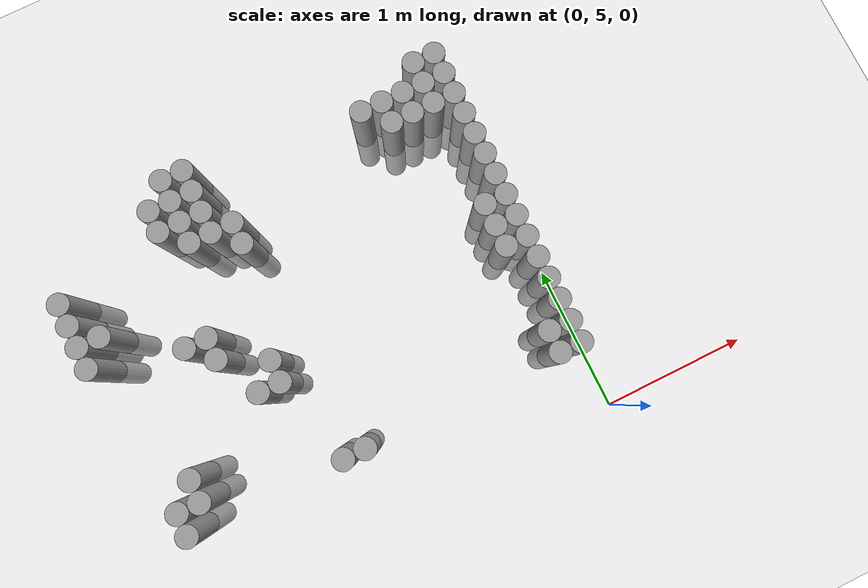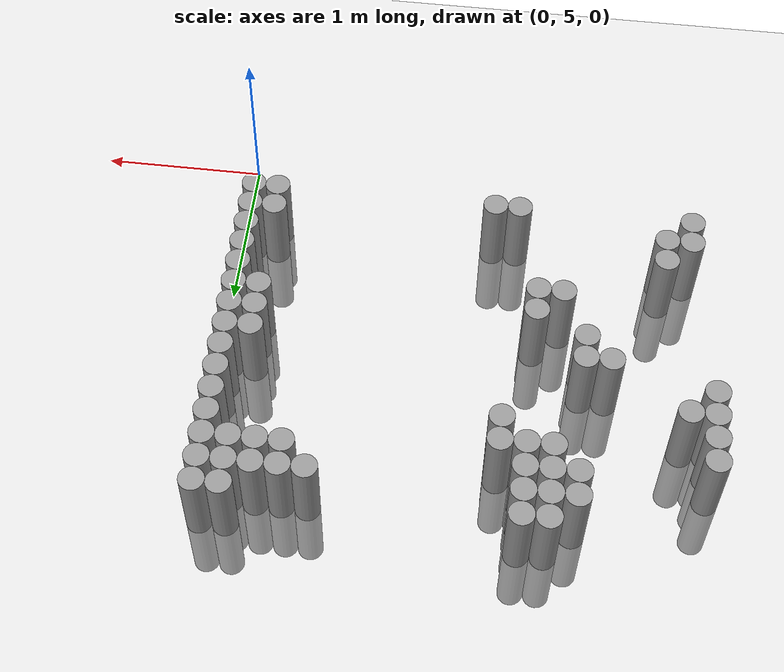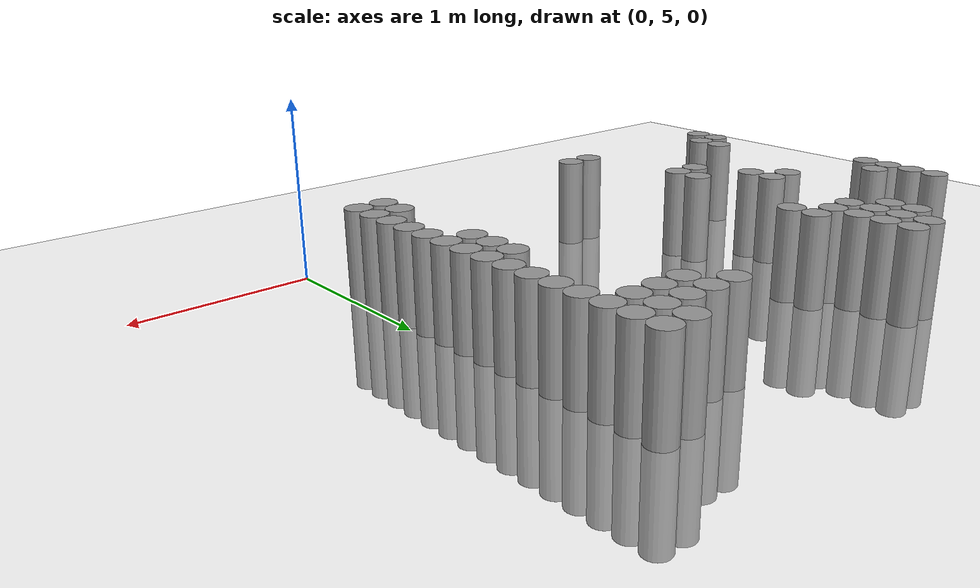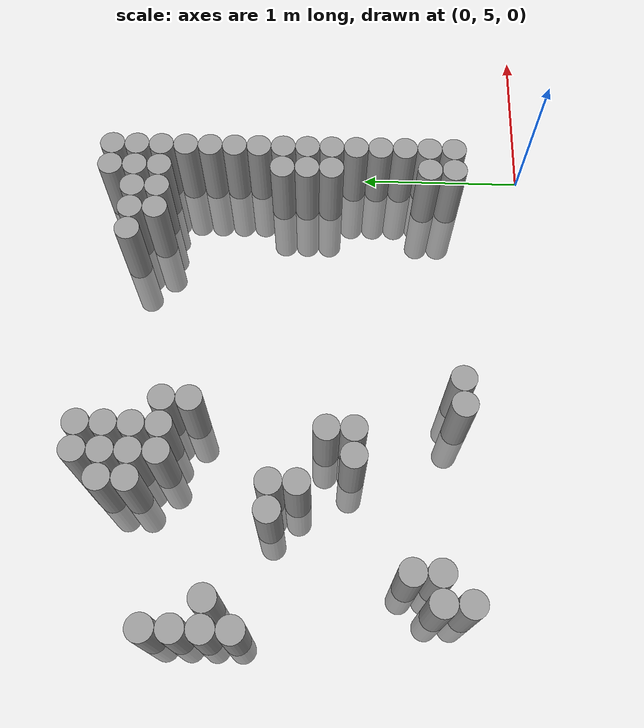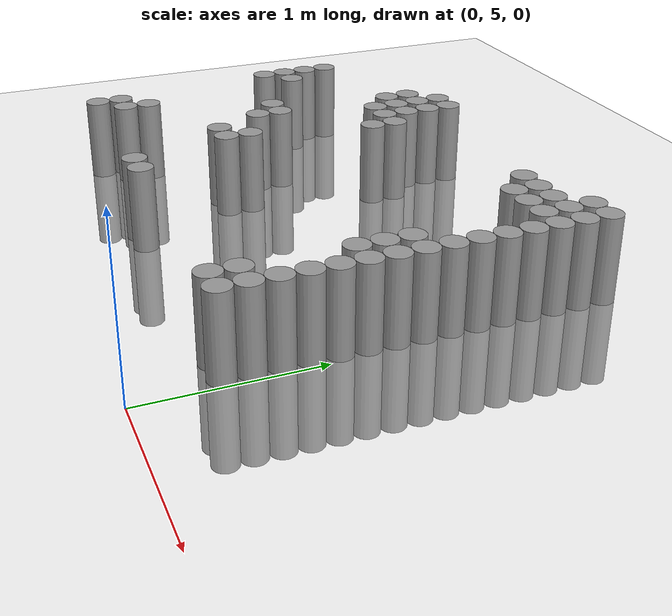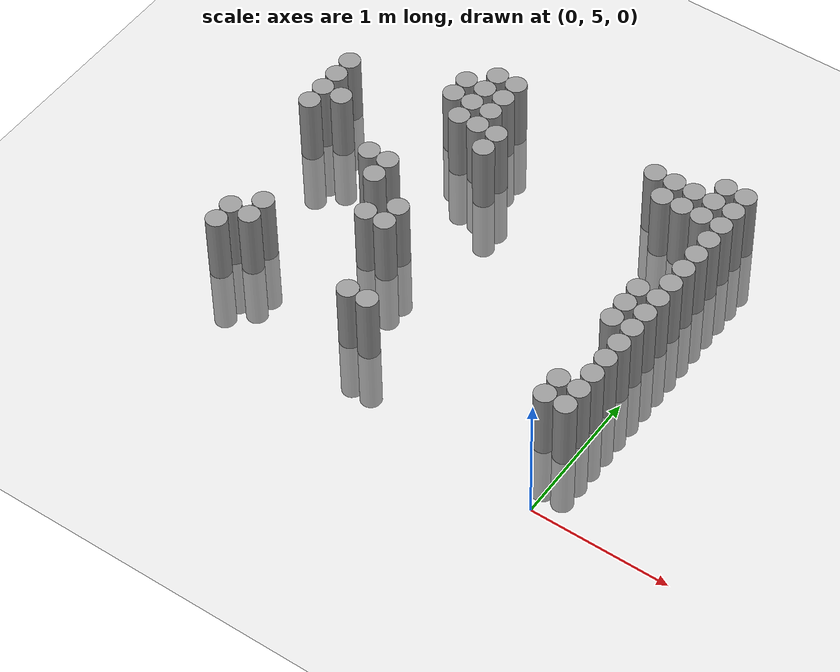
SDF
<sdf version="1.6">
 <world name="default">
  <model name="ground_plane">
   <static>1</static>
   <static>1</static>
   <link name="link">
    <collision name="collision">
     <geometry><plane><normal>0 0 1</normal><size>100 100</size></plane></geometry>
     <surface><friction><ode><mu>100</mu><mu2>50</mu2></ode></friction></surface>
    </collision>
    <visual name="visual">
     <cast_shadows>0</cast_shadows>
     <geometry><plane><normal>0 0 1</normal><size>100 100</size></plane></geometry>
     <material>
      <script><uri>file://media/materials/scripts/gazebo.material</uri><name>Gazebo/Grey</name></script>
     </material>
    </visual>
   </link>
  </model>
  <model name="unit_cylinder_161">
   <static>1</static>
   <pose>-2.925000 6.675000 0.000000 0.000000 0.000000 0.000000</pose>
   <link name="link">
    <inertial>
     <mass>1</mass>
     <inertia><ixx>0.145833</ixx><ixy>0</ixy><ixz>0</ixz><iyy>0.145833</iyy><iyz>0</iyz><izz>0.125</izz></inertia>
    </inertial>
    <collision name="collision">
     <geometry><cylinder><radius>0.075000</radius><length>1</length></cylinder></geometry>
    </collision>
    <visual name="visual">
     <geometry><cylinder><radius>0.075000</radius><length>1</length></cylinder></geometry>
     <material>
      <script><name>Gazebo/Grey</name><uri>file://media/materials/scripts/gazebo.material</uri></script>
     </material>
    </visual>
   </link>
  </model>
  <model name="unit_cylinder_162">
   <static>1</static>
   <pose>-2.925000 6.825000 0.000000 0.000000 0.000000 0.000000</pose>
   <link name="link">
    <inertial>
     <mass>1</mass>
     <inertia><ixx>0.145833</ixx><ixy>0</ixy><ixz>0</ixz><iyy>0.145833</iyy><iyz>0</iyz><izz>0.125</izz></inertia>
    </inertial>
    <collision name="collision">
     <geometry><cylinder><radius>0.075000</radius><length>1</length></cylinder></geometry>
    </collision>
    <visual name="visual">
     <geometry><cylinder><radius>0.075000</radius><length>1</length></cylinder></geometry>
     <material>
      <script><name>Gazebo/Grey</name><uri>file://media/materials/scripts/gazebo.material</uri></script>
     </material>
    </visual>
   </link>
  </model>
  <model name="unit_cylinder_163">
   <static>1</static>
   <pose>-2.925000 6.975000 0.000000 0.000000 0.000000 0.000000</pose>
   <link name="link">
    <inertial>
     <mass>1</mass>
     <inertia><ixx>0.145833</ixx><ixy>0</ixy><ixz>0</ixz><iyy>0.145833</iyy><iyz>0</iyz><izz>0.125</izz></inertia>
    </inertial>
    <collision name="collision">
     <geometry><cylinder><radius>0.075000</radius><length>1</length></cylinder></geometry>
    </collision>
    <visual name="visual">
     <geometry><cylinder><radius>0.075000</radius><length>1</length></cylinder></geometry>
     <material>
      <script><name>Gazebo/Grey</name><uri>file://media/materials/scripts/gazebo.material</uri></script>
     </material>
    </visual>
   </link>
  </model>
  <model name="unit_cylinder_164">
   <static>1</static>
   <pose>-2.925000 7.125000 0.000000 0.000000 0.000000 0.000000</pose>
   <link name="link">
    <inertial>
     <mass>1</mass>
     <inertia><ixx>0.145833</ixx><ixy>0</ixy><ixz>0</ixz><iyy>0.145833</iyy><iyz>0</iyz><izz>0.125</izz></inertia>
    </inertial>
    <collision name="collision">
     <geometry><cylinder><radius>0.075000</radius><length>1</length></cylinder></geometry>
    </collision>
    <visual name="visual">
     <geometry><cylinder><radius>0.075000</radius><length>1</length></cylinder></geometry>
     <material>
      <script><name>Gazebo/Grey</name><uri>file://media/materials/scripts/gazebo.material</uri></script>
     </material>
    </visual>
   </link>
  </model>
  <model name="unit_cylinder_166">
   <static>1</static>
   <pose>-2.775000 5.475000 0.000000 0.000000 0.000000 0.000000</pose>
   <link name="link">
    <inertial>
     <mass>1</mass>
     <inertia><ixx>0.145833</ixx><ixy>0</ixy><ixz>0</ixz><iyy>0.145833</iyy><iyz>0</iyz><izz>0.125</izz></inertia>
    </inertial>
    <collision name="collision">
     <geometry><cylinder><radius>0.075000</radius><length>1</length></cylinder></geometry>
    </collision>
    <visual name="visual">
     <geometry><cylinder><radius>0.075000</radius><length>1</length></cylinder></geometry>
     <material>
      <script><name>Gazebo/Grey</name><uri>file://media/materials/scripts/gazebo.material</uri></script>
     </material>
    </visual>
   </link>
  </model>
  <model name="unit_cylinder_167">
   <static>1</static>
   <pose>-2.775000 5.625000 0.000000 0.000000 0.000000 0.000000</pose>
   <link name="link">
    <inertial>
     <mass>1</mass>
     <inertia><ixx>0.145833</ixx><ixy>0</ixy><ixz>0</ixz><iyy>0.145833</iyy><iyz>0</iyz><izz>0.125</izz></inertia>
    </inertial>
    <collision name="collision">
     <geometry><cylinder><radius>0.075000</radius><length>1</length></cylinder></geometry>
    </collision>
    <visual name="visual">
     <geometry><cylinder><radius>0.075000</radius><length>1</length></cylinder></geometry>
     <material>
      <script><name>Gazebo/Grey</name><uri>file://media/materials/scripts/gazebo.material</uri></script>
     </material>
    </visual>
   </link>
  </model>
  <model name="unit_cylinder_168">
   <static>1</static>
   <pose>-2.775000 6.825000 0.000000 0.000000 0.000000 0.000000</pose>
   <link name="link">
    <inertial>
     <mass>1</mass>
     <inertia><ixx>0.145833</ixx><ixy>0</ixy><ixz>0</ixz><iyy>0.145833</iyy><iyz>0</iyz><izz>0.125</izz></inertia>
    </inertial>
    <collision name="collision">
     <geometry><cylinder><radius>0.075000</radius><length>1</length></cylinder></geometry>
    </collision>
    <visual name="visual">
     <geometry><cylinder><radius>0.075000</radius><length>1</length></cylinder></geometry>
     <material>
      <script><name>Gazebo/Grey</name><uri>file://media/materials/scripts/gazebo.material</uri></script>
     </material>
    </visual>
   </link>
  </model>
  <model name="unit_cylinder_173">
   <static>1</static>
   <pose>-2.625000 5.625000 0.000000 0.000000 0.000000 0.000000</pose>
   <link name="link">
    <inertial>
     <mass>1</mass>
     <inertia><ixx>0.145833</ixx><ixy>0</ixy><ixz>0</ixz><iyy>0.145833</iyy><iyz>0</iyz><izz>0.125</izz></inertia>
    </inertial>
    <collision name="collision">
     <geometry><cylinder><radius>0.075000</radius><length>1</length></cylinder></geometry>
    </collision>
    <visual name="visual">
     <geometry><cylinder><radius>0.075000</radius><length>1</length></cylinder></geometry>
     <material>
      <script><name>Gazebo/Grey</name><uri>file://media/materials/scripts/gazebo.material</uri></script>
     </material>
    </visual>
   </link>
  </model>
  <model name="unit_cylinder_174">
   <static>1</static>
   <pose>-2.625000 5.775000 0.000000 0.000000 0.000000 0.000000</pose>
   <link name="link">
    <inertial>
     <mass>1</mass>
     <inertia><ixx>0.145833</ixx><ixy>0</ixy><ixz>0</ixz><iyy>0.145833</iyy><iyz>0</iyz><izz>0.125</izz></inertia>
    </inertial>
    <collision name="collision">
     <geometry><cylinder><radius>0.075000</radius><length>1</length></cylinder></geometry>
    </collision>
    <visual name="visual">
     <geometry><cylinder><radius>0.075000</radius><length>1</length></cylinder></geometry>
     <material>
      <script><name>Gazebo/Grey</name><uri>file://media/materials/scripts/gazebo.material</uri></script>
     </material>
    </visual>
   </link>
  </model>
  <model name="unit_cylinder_185">
   <static>1</static>
   <pose>-2.325000 6.525000 0.000000 0.000000 0.000000 0.000000</pose>
   <link name="link">
    <inertial>
     <mass>1</mass>
     <inertia><ixx>0.145833</ixx><ixy>0</ixy><ixz>0</ixz><iyy>0.145833</iyy><iyz>0</iyz><izz>0.125</izz></inertia>
    </inertial>
    <collision name="collision">
     <geometry><cylinder><radius>0.075000</radius><length>1</length></cylinder></geometry>
    </collision>
    <visual name="visual">
     <geometry><cylinder><radius>0.075000</radius><length>1</length></cylinder></geometry>
     <material>
      <script><name>Gazebo/Grey</name><uri>file://media/materials/scripts/gazebo.material</uri></script>
     </material>
    </visual>
   </link>
  </model>
  <model name="unit_cylinder_191">
   <static>1</static>
   <pose>-2.175000 6.375000 0.000000 0.000000 0.000000 0.000000</pose>
   <link name="link">
    <inertial>
     <mass>1</mass>
     <inertia><ixx>0.145833</ixx><ixy>0</ixy><ixz>0</ixz><iyy>0.145833</iyy><iyz>0</iyz><izz>0.125</izz></inertia>
    </inertial>
    <collision name="collision">
     <geometry><cylinder><radius>0.075000</radius><length>1</length></cylinder></geometry>
    </collision>
    <visual name="visual">
     <geometry><cylinder><radius>0.075000</radius><length>1</length></cylinder></geometry>
     <material>
      <script><name>Gazebo/Grey</name><uri>file://media/materials/scripts/gazebo.material</uri></script>
     </material>
    </visual>
   </link>
  </model>
  <model name="unit_cylinder_192">
   <static>1</static>
   <pose>-2.175000 6.525000 0.000000 0.000000 0.000000 0.000000</pose>
   <link name="link">
    <inertial>
     <mass>1</mass>
     <inertia><ixx>0.145833</ixx><ixy>0</ixy><ixz>0</ixz><iyy>0.145833</iyy><iyz>0</iyz><izz>0.125</izz></inertia>
    </inertial>
    <collision name="collision">
     <geometry><cylinder><radius>0.075000</radius><length>1</length></cylinder></geometry>
    </collision>
    <visual name="visual">
     <geometry><cylinder><radius>0.075000</radius><length>1</length></cylinder></geometry>
     <material>
      <script><name>Gazebo/Grey</name><uri>file://media/materials/scripts/gazebo.material</uri></script>
     </material>
    </visual>
   </link>
  </model>
  <model name="unit_cylinder_193">
   <static>1</static>
   <pose>-2.175000 7.275000 0.000000 0.000000 0.000000 0.000000</pose>
   <link name="link">
    <inertial>
     <mass>1</mass>
     <inertia><ixx>0.145833</ixx><ixy>0</ixy><ixz>0</ixz><iyy>0.145833</iyy><iyz>0</iyz><izz>0.125</izz></inertia>
    </inertial>
    <collision name="collision">
     <geometry><cylinder><radius>0.075000</radius><length>1</length></cylinder></geometry>
    </collision>
    <visual name="visual">
     <geometry><cylinder><radius>0.075000</radius><length>1</length></cylinder></geometry>
     <material>
      <script><name>Gazebo/Grey</name><uri>file://media/materials/scripts/gazebo.material</uri></script>
     </material>
    </visual>
   </link>
  </model>
  <model name="unit_cylinder_194">
   <static>1</static>
   <pose>-2.175000 7.425000 0.000000 0.000000 0.000000 0.000000</pose>
   <link name="link">
    <inertial>
     <mass>1</mass>
     <inertia><ixx>0.145833</ixx><ixy>0</ixy><ixz>0</ixz><iyy>0.145833</iyy><iyz>0</iyz><izz>0.125</izz></inertia>
    </inertial>
    <collision name="collision">
     <geometry><cylinder><radius>0.075000</radius><length>1</length></cylinder></geometry>
    </collision>
    <visual name="visual">
     <geometry><cylinder><radius>0.075000</radius><length>1</length></cylinder></geometry>
     <material>
      <script><name>Gazebo/Grey</name><uri>file://media/materials/scripts/gazebo.material</uri></script>
     </material>
    </visual>
   </link>
  </model>
  <model name="unit_cylinder_199">
   <static>1</static>
   <pose>-2.025000 6.075000 0.000000 0.000000 0.000000 0.000000</pose>
   <link name="link">
    <inertial>
     <mass>1</mass>
     <inertia><ixx>0.145833</ixx><ixy>0</ixy><ixz>0</ixz><iyy>0.145833</iyy><iyz>0</iyz><izz>0.125</izz></inertia>
    </inertial>
    <collision name="collision">
     <geometry><cylinder><radius>0.075000</radius><length>1</length></cylinder></geometry>
    </collision>
    <visual name="visual">
     <geometry><cylinder><radius>0.075000</radius><length>1</length></cylinder></geometry>
     <material>
      <script><name>Gazebo/Grey</name><uri>file://media/materials/scripts/gazebo.material</uri></script>
     </material>
    </visual>
   </link>
  </model>
  <model name="unit_cylinder_200">
   <static>1</static>
   <pose>-2.025000 7.125000 0.000000 0.000000 0.000000 0.000000</pose>
   <link name="link">
    <inertial>
     <mass>1</mass>
     <inertia><ixx>0.145833</ixx><ixy>0</ixy><ixz>0</ixz><iyy>0.145833</iyy><iyz>0</iyz><izz>0.125</izz></inertia>
    </inertial>
    <collision name="collision">
     <geometry><cylinder><radius>0.075000</radius><length>1</length></cylinder></geometry>
    </collision>
    <visual name="visual">
     <geometry><cylinder><radius>0.075000</radius><length>1</length></cylinder></geometry>
     <material>
      <script><name>Gazebo/Grey</name><uri>file://media/materials/scripts/gazebo.material</uri></script>
     </material>
    </visual>
   </link>
  </model>
  <model name="unit_cylinder_201">
   <static>1</static>
   <pose>-2.025000 7.275000 0.000000 0.000000 0.000000 0.000000</pose>
   <link name="link">
    <inertial>
     <mass>1</mass>
     <inertia><ixx>0.145833</ixx><ixy>0</ixy><ixz>0</ixz><iyy>0.145833</iyy><iyz>0</iyz><izz>0.125</izz></inertia>
    </inertial>
    <collision name="collision">
     <geometry><cylinder><radius>0.075000</radius><length>1</length></cylinder></geometry>
    </collision>
    <visual name="visual">
     <geometry><cylinder><radius>0.075000</radius><length>1</length></cylinder></geometry>
     <material>
      <script><name>Gazebo/Grey</name><uri>file://media/materials/scripts/gazebo.material</uri></script>
     </material>
    </visual>
   </link>
  </model>
  <model name="unit_cylinder_202">
   <static>1</static>
   <pose>-2.025000 7.425000 0.000000 0.000000 0.000000 0.000000</pose>
   <link name="link">
    <inertial>
     <mass>1</mass>
     <inertia><ixx>0.145833</ixx><ixy>0</ixy><ixz>0</ixz><iyy>0.145833</iyy><iyz>0</iyz><izz>0.125</izz></inertia>
    </inertial>
    <collision name="collision">
     <geometry><cylinder><radius>0.075000</radius><length>1</length></cylinder></geometry>
    </collision>
    <visual name="visual">
     <geometry><cylinder><radius>0.075000</radius><length>1</length></cylinder></geometry>
     <material>
      <script><name>Gazebo/Grey</name><uri>file://media/materials/scripts/gazebo.material</uri></script>
     </material>
    </visual>
   </link>
  </model>
  <model name="unit_cylinder_203">
   <static>1</static>
   <pose>-2.025000 7.575000 0.000000 0.000000 0.000000 0.000000</pose>
   <link name="link">
    <inertial>
     <mass>1</mass>
     <inertia><ixx>0.145833</ixx><ixy>0</ixy><ixz>0</ixz><iyy>0.145833</iyy><iyz>0</iyz><izz>0.125</izz></inertia>
    </inertial>
    <collision name="collision">
     <geometry><cylinder><radius>0.075000</radius><length>1</length></cylinder></geometry>
    </collision>
    <visual name="visual">
     <geometry><cylinder><radius>0.075000</radius><length>1</length></cylinder></geometry>
     <material>
      <script><name>Gazebo/Grey</name><uri>file://media/materials/scripts/gazebo.material</uri></script>
     </material>
    </visual>
   </link>
  </model>
  <model name="unit_cylinder_211">
   <static>1</static>
   <pose>-1.875000 6.075000 0.000000 0.000000 0.000000 0.000000</pose>
   <link name="link">
    <inertial>
     <mass>1</mass>
     <inertia><ixx>0.145833</ixx><ixy>0</ixy><ixz>0</ixz><iyy>0.145833</iyy><iyz>0</iyz><izz>0.125</izz></inertia>
    </inertial>
    <collision name="collision">
     <geometry><cylinder><radius>0.075000</radius><length>1</length></cylinder></geometry>
    </collision>
    <visual name="visual">
     <geometry><cylinder><radius>0.075000</radius><length>1</length></cylinder></geometry>
     <material>
      <script><name>Gazebo/Grey</name><uri>file://media/materials/scripts/gazebo.material</uri></script>
     </material>
    </visual>
   </link>
  </model>
  <model name="unit_cylinder_212">
   <static>1</static>
   <pose>-1.875000 6.225000 0.000000 0.000000 0.000000 0.000000</pose>
   <link name="link">
    <inertial>
     <mass>1</mass>
     <inertia><ixx>0.145833</ixx><ixy>0</ixy><ixz>0</ixz><iyy>0.145833</iyy><iyz>0</iyz><izz>0.125</izz></inertia>
    </inertial>
    <collision name="collision">
     <geometry><cylinder><radius>0.075000</radius><length>1</length></cylinder></geometry>
    </collision>
    <visual name="visual">
     <geometry><cylinder><radius>0.075000</radius><length>1</length></cylinder></geometry>
     <material>
      <script><name>Gazebo/Grey</name><uri>file://media/materials/scripts/gazebo.material</uri></script>
     </material>
    </visual>
   </link>
  </model>
  <model name="unit_cylinder_213">
   <static>1</static>
   <pose>-1.875000 7.125000 0.000000 0.000000 0.000000 0.000000</pose>
   <link name="link">
    <inertial>
     <mass>1</mass>
     <inertia><ixx>0.145833</ixx><ixy>0</ixy><ixz>0</ixz><iyy>0.145833</iyy><iyz>0</iyz><izz>0.125</izz></inertia>
    </inertial>
    <collision name="collision">
     <geometry><cylinder><radius>0.075000</radius><length>1</length></cylinder></geometry>
    </collision>
    <visual name="visual">
     <geometry><cylinder><radius>0.075000</radius><length>1</length></cylinder></geometry>
     <material>
      <script><name>Gazebo/Grey</name><uri>file://media/materials/scripts/gazebo.material</uri></script>
     </material>
    </visual>
   </link>
  </model>
  <model name="unit_cylinder_214">
   <static>1</static>
   <pose>-1.875000 7.275000 0.000000 0.000000 0.000000 0.000000</pose>
   <link name="link">
    <inertial>
     <mass>1</mass>
     <inertia><ixx>0.145833</ixx><ixy>0</ixy><ixz>0</ixz><iyy>0.145833</iyy><iyz>0</iyz><izz>0.125</izz></inertia>
    </inertial>
    <collision name="collision">
     <geometry><cylinder><radius>0.075000</radius><length>1</length></cylinder></geometry>
    </collision>
    <visual name="visual">
     <geometry><cylinder><radius>0.075000</radius><length>1</length></cylinder></geometry>
     <material>
      <script><name>Gazebo/Grey</name><uri>file://media/materials/scripts/gazebo.material</uri></script>
     </material>
    </visual>
   </link>
  </model>
  <model name="unit_cylinder_215">
   <static>1</static>
   <pose>-1.875000 7.425000 0.000000 0.000000 0.000000 0.000000</pose>
   <link name="link">
    <inertial>
     <mass>1</mass>
     <inertia><ixx>0.145833</ixx><ixy>0</ixy><ixz>0</ixz><iyy>0.145833</iyy><iyz>0</iyz><izz>0.125</izz></inertia>
    </inertial>
    <collision name="collision">
     <geometry><cylinder><radius>0.075000</radius><length>1</length></cylinder></geometry>
    </collision>
    <visual name="visual">
     <geometry><cylinder><radius>0.075000</radius><length>1</length></cylinder></geometry>
     <material>
      <script><name>Gazebo/Grey</name><uri>file://media/materials/scripts/gazebo.material</uri></script>
     </material>
    </visual>
   </link>
  </model>
  <model name="unit_cylinder_216">
   <static>1</static>
   <pose>-1.875000 7.575000 0.000000 0.000000 0.000000 0.000000</pose>
   <link name="link">
    <inertial>
     <mass>1</mass>
     <inertia><ixx>0.145833</ixx><ixy>0</ixy><ixz>0</ixz><iyy>0.145833</iyy><iyz>0</iyz><izz>0.125</izz></inertia>
    </inertial>
    <collision name="collision">
     <geometry><cylinder><radius>0.075000</radius><length>1</length></cylinder></geometry>
    </collision>
    <visual name="visual">
     <geometry><cylinder><radius>0.075000</radius><length>1</length></cylinder></geometry>
     <material>
      <script><name>Gazebo/Grey</name><uri>file://media/materials/scripts/gazebo.material</uri></script>
     </material>
    </visual>
   </link>
  </model>
  <model name="unit_cylinder_223">
   <static>1</static>
   <pose>-1.725000 5.475000 0.000000 0.000000 0.000000 0.000000</pose>
   <link name="link">
    <inertial>
     <mass>1</mass>
     <inertia><ixx>0.145833</ixx><ixy>0</ixy><ixz>0</ixz><iyy>0.145833</iyy><iyz>0</iyz><izz>0.125</izz></inertia>
    </inertial>
    <collision name="collision">
     <geometry><cylinder><radius>0.075000</radius><length>1</length></cylinder></geometry>
    </collision>
    <visual name="visual">
     <geometry><cylinder><radius>0.075000</radius><length>1</length></cylinder></geometry>
     <material>
      <script><name>Gazebo/Grey</name><uri>file://media/materials/scripts/gazebo.material</uri></script>
     </material>
    </visual>
   </link>
  </model>
  <model name="unit_cylinder_224">
   <static>1</static>
   <pose>-1.725000 6.975000 0.000000 0.000000 0.000000 0.000000</pose>
   <link name="link">
    <inertial>
     <mass>1</mass>
     <inertia><ixx>0.145833</ixx><ixy>0</ixy><ixz>0</ixz><iyy>0.145833</iyy><iyz>0</iyz><izz>0.125</izz></inertia>
    </inertial>
    <collision name="collision">
     <geometry><cylinder><radius>0.075000</radius><length>1</length></cylinder></geometry>
    </collision>
    <visual name="visual">
     <geometry><cylinder><radius>0.075000</radius><length>1</length></cylinder></geometry>
     <material>
      <script><name>Gazebo/Grey</name><uri>file://media/materials/scripts/gazebo.material</uri></script>
     </material>
    </visual>
   </link>
  </model>
  <model name="unit_cylinder_225">
   <static>1</static>
   <pose>-1.725000 7.125000 0.000000 0.000000 0.000000 0.000000</pose>
   <link name="link">
    <inertial>
     <mass>1</mass>
     <inertia><ixx>0.145833</ixx><ixy>0</ixy><ixz>0</ixz><iyy>0.145833</iyy><iyz>0</iyz><izz>0.125</izz></inertia>
    </inertial>
    <collision name="collision">
     <geometry><cylinder><radius>0.075000</radius><length>1</length></cylinder></geometry>
    </collision>
    <visual name="visual">
     <geometry><cylinder><radius>0.075000</radius><length>1</length></cylinder></geometry>
     <material>
      <script><name>Gazebo/Grey</name><uri>file://media/materials/scripts/gazebo.material</uri></script>
     </material>
    </visual>
   </link>
  </model>
  <model name="unit_cylinder_232">
   <static>1</static>
   <pose>-1.575000 5.475000 0.000000 0.000000 0.000000 0.000000</pose>
   <link name="link">
    <inertial>
     <mass>1</mass>
     <inertia><ixx>0.145833</ixx><ixy>0</ixy><ixz>0</ixz><iyy>0.145833</iyy><iyz>0</iyz><izz>0.125</izz></inertia>
    </inertial>
    <collision name="collision">
     <geometry><cylinder><radius>0.075000</radius><length>1</length></cylinder></geometry>
    </collision>
    <visual name="visual">
     <geometry><cylinder><radius>0.075000</radius><length>1</length></cylinder></geometry>
     <material>
      <script><name>Gazebo/Grey</name><uri>file://media/materials/scripts/gazebo.material</uri></script>
     </material>
    </visual>
   </link>
  </model>
  <model name="unit_cylinder_237">
   <static>1</static>
   <pose>-0.675000 7.425000 0.000000 0.000000 0.000000 0.000000</pose>
   <link name="link">
    <inertial>
     <mass>1</mass>
     <inertia><ixx>0.145833</ixx><ixy>0</ixy><ixz>0</ixz><iyy>0.145833</iyy><iyz>0</iyz><izz>0.125</izz></inertia>
    </inertial>
    <collision name="collision">
     <geometry><cylinder><radius>0.075000</radius><length>1</length></cylinder></geometry>
    </collision>
    <visual name="visual">
     <geometry><cylinder><radius>0.075000</radius><length>1</length></cylinder></geometry>
     <material>
      <script><name>Gazebo/Grey</name><uri>file://media/materials/scripts/gazebo.material</uri></script>
     </material>
    </visual>
   </link>
  </model>
  <model name="unit_cylinder_238">
   <static>1</static>
   <pose>-0.525000 7.275000 0.000000 0.000000 0.000000 0.000000</pose>
   <link name="link">
    <inertial>
     <mass>1</mass>
     <inertia><ixx>0.145833</ixx><ixy>0</ixy><ixz>0</ixz><iyy>0.145833</iyy><iyz>0</iyz><izz>0.125</izz></inertia>
    </inertial>
    <collision name="collision">
     <geometry><cylinder><radius>0.075000</radius><length>1</length></cylinder></geometry>
    </collision>
    <visual name="visual">
     <geometry><cylinder><radius>0.075000</radius><length>1</length></cylinder></geometry>
     <material>
      <script><name>Gazebo/Grey</name><uri>file://media/materials/scripts/gazebo.material</uri></script>
     </material>
    </visual>
   </link>
  </model>
  <model name="unit_cylinder_239">
   <static>1</static>
   <pose>-0.525000 7.425000 0.000000 0.000000 0.000000 0.000000</pose>
   <link name="link">
    <inertial>
     <mass>1</mass>
     <inertia><ixx>0.145833</ixx><ixy>0</ixy><ixz>0</ixz><iyy>0.145833</iyy><iyz>0</iyz><izz>0.125</izz></inertia>
    </inertial>
    <collision name="collision">
     <geometry><cylinder><radius>0.075000</radius><length>1</length></cylinder></geometry>
    </collision>
    <visual name="visual">
     <geometry><cylinder><radius>0.075000</radius><length>1</length></cylinder></geometry>
     <material>
      <script><name>Gazebo/Grey</name><uri>file://media/materials/scripts/gazebo.material</uri></script>
     </material>
    </visual>
   </link>
  </model>
  <model name="unit_cylinder_240">
   <static>1</static>
   <pose>-0.375000 7.275000 0.000000 0.000000 0.000000 0.000000</pose>
   <link name="link">
    <inertial>
     <mass>1</mass>
     <inertia><ixx>0.145833</ixx><ixy>0</ixy><ixz>0</ixz><iyy>0.145833</iyy><iyz>0</iyz><izz>0.125</izz></inertia>
    </inertial>
    <collision name="collision">
     <geometry><cylinder><radius>0.075000</radius><length>1</length></cylinder></geometry>
    </collision>
    <visual name="visual">
     <geometry><cylinder><radius>0.075000</radius><length>1</length></cylinder></geometry>
     <material>
      <script><name>Gazebo/Grey</name><uri>file://media/materials/scripts/gazebo.material</uri></script>
     </material>
    </visual>
   </link>
  </model>
  <model name="unit_cylinder_241">
   <static>1</static>
   <pose>-0.375000 7.425000 0.000000 0.000000 0.000000 0.000000</pose>
   <link name="link">
    <inertial>
     <mass>1</mass>
     <inertia><ixx>0.145833</ixx><ixy>0</ixy><ixz>0</ixz><iyy>0.145833</iyy><iyz>0</iyz><izz>0.125</izz></inertia>
    </inertial>
    <collision name="collision">
     <geometry><cylinder><radius>0.075000</radius><length>1</length></cylinder></geometry>
    </collision>
    <visual name="visual">
     <geometry><cylinder><radius>0.075000</radius><length>1</length></cylinder></geometry>
     <material>
      <script><name>Gazebo/Grey</name><uri>file://media/materials/scripts/gazebo.material</uri></script>
     </material>
    </visual>
   </link>
  </model>
  <model name="unit_cylinder_242">
   <static>1</static>
   <pose>-0.225000 5.475000 0.000000 0.000000 0.000000 0.000000</pose>
   <link name="link">
    <inertial>
     <mass>1</mass>
     <inertia><ixx>0.145833</ixx><ixy>0</ixy><ixz>0</ixz><iyy>0.145833</iyy><iyz>0</iyz><izz>0.125</izz></inertia>
    </inertial>
    <collision name="collision">
     <geometry><cylinder><radius>0.075000</radius><length>1</length></cylinder></geometry>
    </collision>
    <visual name="visual">
     <geometry><cylinder><radius>0.075000</radius><length>1</length></cylinder></geometry>
     <material>
      <script><name>Gazebo/Grey</name><uri>file://media/materials/scripts/gazebo.material</uri></script>
     </material>
    </visual>
   </link>
  </model>
  <model name="unit_cylinder_243">
   <static>1</static>
   <pose>-0.225000 5.625000 0.000000 0.000000 0.000000 0.000000</pose>
   <link name="link">
    <inertial>
     <mass>1</mass>
     <inertia><ixx>0.145833</ixx><ixy>0</ixy><ixz>0</ixz><iyy>0.145833</iyy><iyz>0</iyz><izz>0.125</izz></inertia>
    </inertial>
    <collision name="collision">
     <geometry><cylinder><radius>0.075000</radius><length>1</length></cylinder></geometry>
    </collision>
    <visual name="visual">
     <geometry><cylinder><radius>0.075000</radius><length>1</length></cylinder></geometry>
     <material>
      <script><name>Gazebo/Grey</name><uri>file://media/materials/scripts/gazebo.material</uri></script>
     </material>
    </visual>
   </link>
  </model>
  <model name="unit_cylinder_244">
   <static>1</static>
   <pose>-0.225000 6.225000 0.000000 0.000000 0.000000 0.000000</pose>
   <link name="link">
    <inertial>
     <mass>1</mass>
     <inertia><ixx>0.145833</ixx><ixy>0</ixy><ixz>0</ixz><iyy>0.145833</iyy><iyz>0</iyz><izz>0.125</izz></inertia>
    </inertial>
    <collision name="collision">
     <geometry><cylinder><radius>0.075000</radius><length>1</length></cylinder></geometry>
    </collision>
    <visual name="visual">
     <geometry><cylinder><radius>0.075000</radius><length>1</length></cylinder></geometry>
     <material>
      <script><name>Gazebo/Grey</name><uri>file://media/materials/scripts/gazebo.material</uri></script>
     </material>
    </visual>
   </link>
  </model>
  <model name="unit_cylinder_245">
   <static>1</static>
   <pose>-0.225000 6.375000 0.000000 0.000000 0.000000 0.000000</pose>
   <link name="link">
    <inertial>
     <mass>1</mass>
     <inertia><ixx>0.145833</ixx><ixy>0</ixy><ixz>0</ixz><iyy>0.145833</iyy><iyz>0</iyz><izz>0.125</izz></inertia>
    </inertial>
    <collision name="collision">
     <geometry><cylinder><radius>0.075000</radius><length>1</length></cylinder></geometry>
    </collision>
    <visual name="visual">
     <geometry><cylinder><radius>0.075000</radius><length>1</length></cylinder></geometry>
     <material>
      <script><name>Gazebo/Grey</name><uri>file://media/materials/scripts/gazebo.material</uri></script>
     </material>
    </visual>
   </link>
  </model>
  <model name="unit_cylinder_246">
   <static>1</static>
   <pose>-0.225000 6.525000 0.000000 0.000000 0.000000 0.000000</pose>
   <link name="link">
    <inertial>
     <mass>1</mass>
     <inertia><ixx>0.145833</ixx><ixy>0</ixy><ixz>0</ixz><iyy>0.145833</iyy><iyz>0</iyz><izz>0.125</izz></inertia>
    </inertial>
    <collision name="collision">
     <geometry><cylinder><radius>0.075000</radius><length>1</length></cylinder></geometry>
    </collision>
    <visual name="visual">
     <geometry><cylinder><radius>0.075000</radius><length>1</length></cylinder></geometry>
     <material>
      <script><name>Gazebo/Grey</name><uri>file://media/materials/scripts/gazebo.material</uri></script>
     </material>
    </visual>
   </link>
  </model>
  <model name="unit_cylinder_247">
   <static>1</static>
   <pose>-0.225000 7.275000 0.000000 0.000000 0.000000 0.000000</pose>
   <link name="link">
    <inertial>
     <mass>1</mass>
     <inertia><ixx>0.145833</ixx><ixy>0</ixy><ixz>0</ixz><iyy>0.145833</iyy><iyz>0</iyz><izz>0.125</izz></inertia>
    </inertial>
    <collision name="collision">
     <geometry><cylinder><radius>0.075000</radius><length>1</length></cylinder></geometry>
    </collision>
    <visual name="visual">
     <geometry><cylinder><radius>0.075000</radius><length>1</length></cylinder></geometry>
     <material>
      <script><name>Gazebo/Grey</name><uri>file://media/materials/scripts/gazebo.material</uri></script>
     </material>
    </visual>
   </link>
  </model>
  <model name="unit_cylinder_248">
   <static>1</static>
   <pose>-0.225000 7.425000 0.000000 0.000000 0.000000 0.000000</pose>
   <link name="link">
    <inertial>
     <mass>1</mass>
     <inertia><ixx>0.145833</ixx><ixy>0</ixy><ixz>0</ixz><iyy>0.145833</iyy><iyz>0</iyz><izz>0.125</izz></inertia>
    </inertial>
    <collision name="collision">
     <geometry><cylinder><radius>0.075000</radius><length>1</length></cylinder></geometry>
    </collision>
    <visual name="visual">
     <geometry><cylinder><radius>0.075000</radius><length>1</length></cylinder></geometry>
     <material>
      <script><name>Gazebo/Grey</name><uri>file://media/materials/scripts/gazebo.material</uri></script>
     </material>
    </visual>
   </link>
  </model>
  <model name="unit_cylinder_249">
   <static>1</static>
   <pose>-0.225000 7.575000 0.000000 0.000000 0.000000 0.000000</pose>
   <link name="link">
    <inertial>
     <mass>1</mass>
     <inertia><ixx>0.145833</ixx><ixy>0</ixy><ixz>0</ixz><iyy>0.145833</iyy><iyz>0</iyz><izz>0.125</izz></inertia>
    </inertial>
    <collision name="collision">
     <geometry><cylinder><radius>0.075000</radius><length>1</length></cylinder></geometry>
    </collision>
    <visual name="visual">
     <geometry><cylinder><radius>0.075000</radius><length>1</length></cylinder></geometry>
     <material>
      <script><name>Gazebo/Grey</name><uri>file://media/materials/scripts/gazebo.material</uri></script>
     </material>
    </visual>
   </link>
  </model>
  <model name="unit_cylinder_258">
   <static>1</static>
   <pose>-0.075000 5.475000 0.000000 0.000000 0.000000 0.000000</pose>
   <link name="link">
    <inertial>
     <mass>1</mass>
     <inertia><ixx>0.145833</ixx><ixy>0</ixy><ixz>0</ixz><iyy>0.145833</iyy><iyz>0</iyz><izz>0.125</izz></inertia>
    </inertial>
    <collision name="collision">
     <geometry><cylinder><radius>0.075000</radius><length>1</length></cylinder></geometry>
    </collision>
    <visual name="visual">
     <geometry><cylinder><radius>0.075000</radius><length>1</length></cylinder></geometry>
     <material>
      <script><name>Gazebo/Grey</name><uri>file://media/materials/scripts/gazebo.material</uri></script>
     </material>
    </visual>
   </link>
  </model>
  <model name="unit_cylinder_259">
   <static>1</static>
   <pose>-0.075000 5.625000 0.000000 0.000000 0.000000 0.000000</pose>
   <link name="link">
    <inertial>
     <mass>1</mass>
     <inertia><ixx>0.145833</ixx><ixy>0</ixy><ixz>0</ixz><iyy>0.145833</iyy><iyz>0</iyz><izz>0.125</izz></inertia>
    </inertial>
    <collision name="collision">
     <geometry><cylinder><radius>0.075000</radius><length>1</length></cylinder></geometry>
    </collision>
    <visual name="visual">
     <geometry><cylinder><radius>0.075000</radius><length>1</length></cylinder></geometry>
     <material>
      <script><name>Gazebo/Grey</name><uri>file://media/materials/scripts/gazebo.material</uri></script>
     </material>
    </visual>
   </link>
  </model>
  <model name="unit_cylinder_260">
   <static>1</static>
   <pose>-0.075000 5.775000 0.000000 0.000000 0.000000 0.000000</pose>
   <link name="link">
    <inertial>
     <mass>1</mass>
     <inertia><ixx>0.145833</ixx><ixy>0</ixy><ixz>0</ixz><iyy>0.145833</iyy><iyz>0</iyz><izz>0.125</izz></inertia>
    </inertial>
    <collision name="collision">
     <geometry><cylinder><radius>0.075000</radius><length>1</length></cylinder></geometry>
    </collision>
    <visual name="visual">
     <geometry><cylinder><radius>0.075000</radius><length>1</length></cylinder></geometry>
     <material>
      <script><name>Gazebo/Grey</name><uri>file://media/materials/scripts/gazebo.material</uri></script>
     </material>
    </visual>
   </link>
  </model>
  <model name="unit_cylinder_261">
   <static>1</static>
   <pose>-0.075000 5.925000 0.000000 0.000000 0.000000 0.000000</pose>
   <link name="link">
    <inertial>
     <mass>1</mass>
     <inertia><ixx>0.145833</ixx><ixy>0</ixy><ixz>0</ixz><iyy>0.145833</iyy><iyz>0</iyz><izz>0.125</izz></inertia>
    </inertial>
    <collision name="collision">
     <geometry><cylinder><radius>0.075000</radius><length>1</length></cylinder></geometry>
    </collision>
    <visual name="visual">
     <geometry><cylinder><radius>0.075000</radius><length>1</length></cylinder></geometry>
     <material>
      <script><name>Gazebo/Grey</name><uri>file://media/materials/scripts/gazebo.material</uri></script>
     </material>
    </visual>
   </link>
  </model>
  <model name="unit_cylinder_262">
   <static>1</static>
   <pose>-0.075000 6.075000 0.000000 0.000000 0.000000 0.000000</pose>
   <link name="link">
    <inertial>
     <mass>1</mass>
     <inertia><ixx>0.145833</ixx><ixy>0</ixy><ixz>0</ixz><iyy>0.145833</iyy><iyz>0</iyz><izz>0.125</izz></inertia>
    </inertial>
    <collision name="collision">
     <geometry><cylinder><radius>0.075000</radius><length>1</length></cylinder></geometry>
    </collision>
    <visual name="visual">
     <geometry><cylinder><radius>0.075000</radius><length>1</length></cylinder></geometry>
     <material>
      <script><name>Gazebo/Grey</name><uri>file://media/materials/scripts/gazebo.material</uri></script>
     </material>
    </visual>
   </link>
  </model>
  <model name="unit_cylinder_263">
   <static>1</static>
   <pose>-0.075000 6.225000 0.000000 0.000000 0.000000 0.000000</pose>
   <link name="link">
    <inertial>
     <mass>1</mass>
     <inertia><ixx>0.145833</ixx><ixy>0</ixy><ixz>0</ixz><iyy>0.145833</iyy><iyz>0</iyz><izz>0.125</izz></inertia>
    </inertial>
    <collision name="collision">
     <geometry><cylinder><radius>0.075000</radius><length>1</length></cylinder></geometry>
    </collision>
    <visual name="visual">
     <geometry><cylinder><radius>0.075000</radius><length>1</length></cylinder></geometry>
     <material>
      <script><name>Gazebo/Grey</name><uri>file://media/materials/scripts/gazebo.material</uri></script>
     </material>
    </visual>
   </link>
  </model>
  <model name="unit_cylinder_264">
   <static>1</static>
   <pose>-0.075000 6.375000 0.000000 0.000000 0.000000 0.000000</pose>
   <link name="link">
    <inertial>
     <mass>1</mass>
     <inertia><ixx>0.145833</ixx><ixy>0</ixy><ixz>0</ixz><iyy>0.145833</iyy><iyz>0</iyz><izz>0.125</izz></inertia>
    </inertial>
    <collision name="collision">
     <geometry><cylinder><radius>0.075000</radius><length>1</length></cylinder></geometry>
    </collision>
    <visual name="visual">
     <geometry><cylinder><radius>0.075000</radius><length>1</length></cylinder></geometry>
     <material>
      <script><name>Gazebo/Grey</name><uri>file://media/materials/scripts/gazebo.material</uri></script>
     </material>
    </visual>
   </link>
  </model>
  <model name="unit_cylinder_265">
   <static>1</static>
   <pose>-0.075000 6.525000 0.000000 0.000000 0.000000 0.000000</pose>
   <link name="link">
    <inertial>
     <mass>1</mass>
     <inertia><ixx>0.145833</ixx><ixy>0</ixy><ixz>0</ixz><iyy>0.145833</iyy><iyz>0</iyz><izz>0.125</izz></inertia>
    </inertial>
    <collision name="collision">
     <geometry><cylinder><radius>0.075000</radius><length>1</length></cylinder></geometry>
    </collision>
    <visual name="visual">
     <geometry><cylinder><radius>0.075000</radius><length>1</length></cylinder></geometry>
     <material>
      <script><name>Gazebo/Grey</name><uri>file://media/materials/scripts/gazebo.material</uri></script>
     </material>
    </visual>
   </link>
  </model>
  <model name="unit_cylinder_266">
   <static>1</static>
   <pose>-0.075000 6.675000 0.000000 0.000000 0.000000 0.000000</pose>
   <link name="link">
    <inertial>
     <mass>1</mass>
     <inertia><ixx>0.145833</ixx><ixy>0</ixy><ixz>0</ixz><iyy>0.145833</iyy><iyz>0</iyz><izz>0.125</izz></inertia>
    </inertial>
    <collision name="collision">
     <geometry><cylinder><radius>0.075000</radius><length>1</length></cylinder></geometry>
    </collision>
    <visual name="visual">
     <geometry><cylinder><radius>0.075000</radius><length>1</length></cylinder></geometry>
     <material>
      <script><name>Gazebo/Grey</name><uri>file://media/materials/scripts/gazebo.material</uri></script>
     </material>
    </visual>
   </link>
  </model>
  <model name="unit_cylinder_267">
   <static>1</static>
   <pose>-0.075000 6.825000 0.000000 0.000000 0.000000 0.000000</pose>
   <link name="link">
    <inertial>
     <mass>1</mass>
     <inertia><ixx>0.145833</ixx><ixy>0</ixy><ixz>0</ixz><iyy>0.145833</iyy><iyz>0</iyz><izz>0.125</izz></inertia>
    </inertial>
    <collision name="collision">
     <geometry><cylinder><radius>0.075000</radius><length>1</length></cylinder></geometry>
    </collision>
    <visual name="visual">
     <geometry><cylinder><radius>0.075000</radius><length>1</length></cylinder></geometry>
     <material>
      <script><name>Gazebo/Grey</name><uri>file://media/materials/scripts/gazebo.material</uri></script>
     </material>
    </visual>
   </link>
  </model>
  <model name="unit_cylinder_268">
   <static>1</static>
   <pose>-0.075000 6.975000 0.000000 0.000000 0.000000 0.000000</pose>
   <link name="link">
    <inertial>
     <mass>1</mass>
     <inertia><ixx>0.145833</ixx><ixy>0</ixy><ixz>0</ixz><iyy>0.145833</iyy><iyz>0</iyz><izz>0.125</izz></inertia>
    </inertial>
    <collision name="collision">
     <geometry><cylinder><radius>0.075000</radius><length>1</length></cylinder></geometry>
    </collision>
    <visual name="visual">
     <geometry><cylinder><radius>0.075000</radius><length>1</length></cylinder></geometry>
     <material>
      <script><name>Gazebo/Grey</name><uri>file://media/materials/scripts/gazebo.material</uri></script>
     </material>
    </visual>
   </link>
  </model>
  <model name="unit_cylinder_269">
   <static>1</static>
   <pose>-0.075000 7.125000 0.000000 0.000000 0.000000 0.000000</pose>
   <link name="link">
    <inertial>
     <mass>1</mass>
     <inertia><ixx>0.145833</ixx><ixy>0</ixy><ixz>0</ixz><iyy>0.145833</iyy><iyz>0</iyz><izz>0.125</izz></inertia>
    </inertial>
    <collision name="collision">
     <geometry><cylinder><radius>0.075000</radius><length>1</length></cylinder></geometry>
    </collision>
    <visual name="visual">
     <geometry><cylinder><radius>0.075000</radius><length>1</length></cylinder></geometry>
     <material>
      <script><name>Gazebo/Grey</name><uri>file://media/materials/scripts/gazebo.material</uri></script>
     </material>
    </visual>
   </link>
  </model>
  <model name="unit_cylinder_270">
   <static>1</static>
   <pose>-0.075000 7.275000 0.000000 0.000000 0.000000 0.000000</pose>
   <link name="link">
    <inertial>
     <mass>1</mass>
     <inertia><ixx>0.145833</ixx><ixy>0</ixy><ixz>0</ixz><iyy>0.145833</iyy><iyz>0</iyz><izz>0.125</izz></inertia>
    </inertial>
    <collision name="collision">
     <geometry><cylinder><radius>0.075000</radius><length>1</length></cylinder></geometry>
    </collision>
    <visual name="visual">
     <geometry><cylinder><radius>0.075000</radius><length>1</length></cylinder></geometry>
     <material>
      <script><name>Gazebo/Grey</name><uri>file://media/materials/scripts/gazebo.material</uri></script>
     </material>
    </visual>
   </link>
  </model>
  <model name="unit_cylinder_271">
   <static>1</static>
   <pose>-0.075000 7.425000 0.000000 0.000000 0.000000 0.000000</pose>
   <link name="link">
    <inertial>
     <mass>1</mass>
     <inertia><ixx>0.145833</ixx><ixy>0</ixy><ixz>0</ixz><iyy>0.145833</iyy><iyz>0</iyz><izz>0.125</izz></inertia>
    </inertial>
    <collision name="collision">
     <geometry><cylinder><radius>0.075000</radius><length>1</length></cylinder></geometry>
    </collision>
    <visual name="visual">
     <geometry><cylinder><radius>0.075000</radius><length>1</length></cylinder></geometry>
     <material>
      <script><name>Gazebo/Grey</name><uri>file://media/materials/scripts/gazebo.material</uri></script>
     </material>
    </visual>
   </link>
  </model>
  <model name="unit_cylinder_272">
   <static>1</static>
   <pose>-0.075000 7.575000 0.000000 0.000000 0.000000 0.000000</pose>
   <link name="link">
    <inertial>
     <mass>1</mass>
     <inertia><ixx>0.145833</ixx><ixy>0</ixy><ixz>0</ixz><iyy>0.145833</iyy><iyz>0</iyz><izz>0.125</izz></inertia>
    </inertial>
    <collision name="collision">
     <geometry><cylinder><radius>0.075000</radius><length>1</length></cylinder></geometry>
    </collision>
    <visual name="visual">
     <geometry><cylinder><radius>0.075000</radius><length>1</length></cylinder></geometry>
     <material>
      <script><name>Gazebo/Grey</name><uri>file://media/materials/scripts/gazebo.material</uri></script>
     </material>
    </visual>
   </link>
  </model>
 </world>
</sdf>
